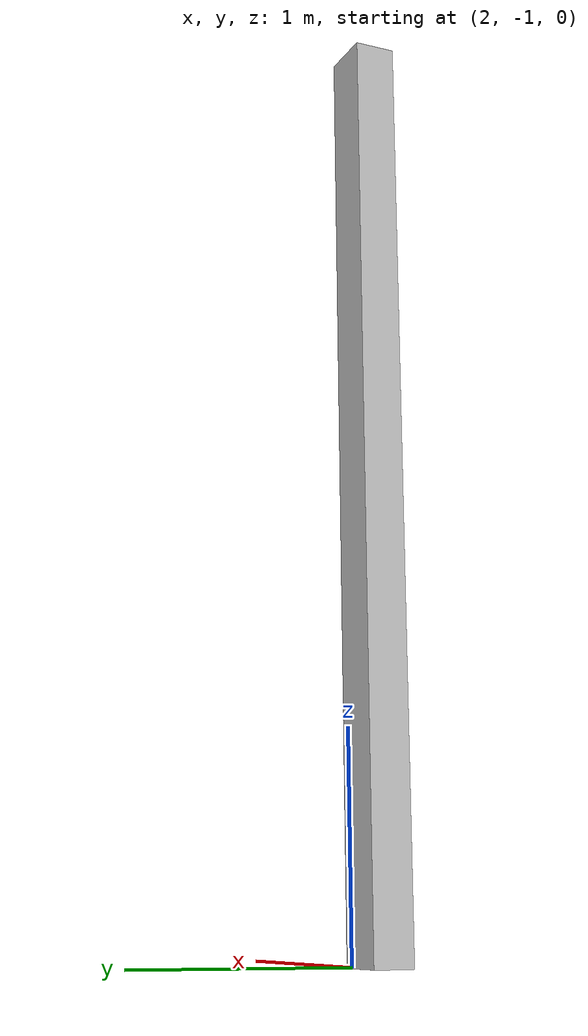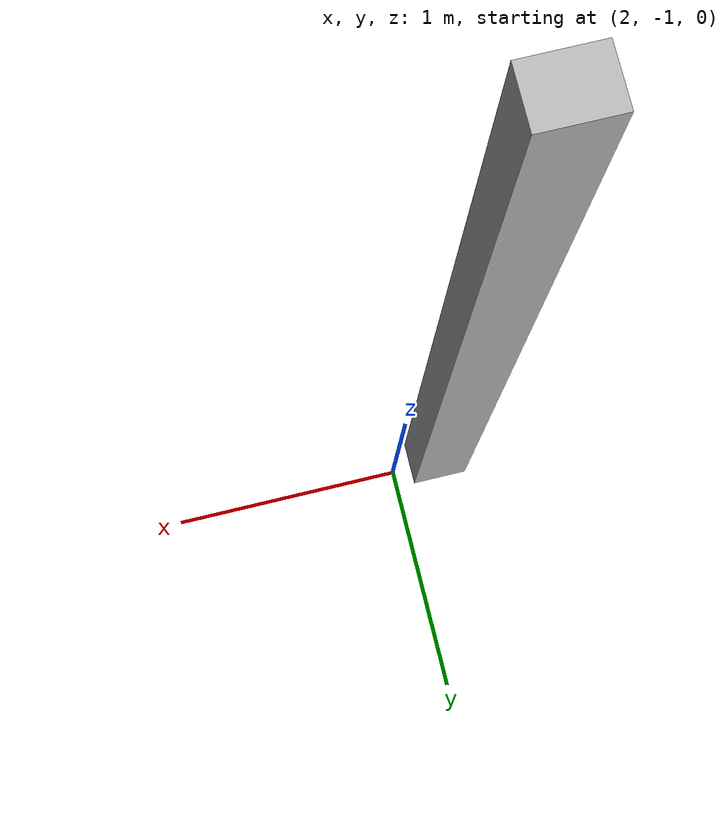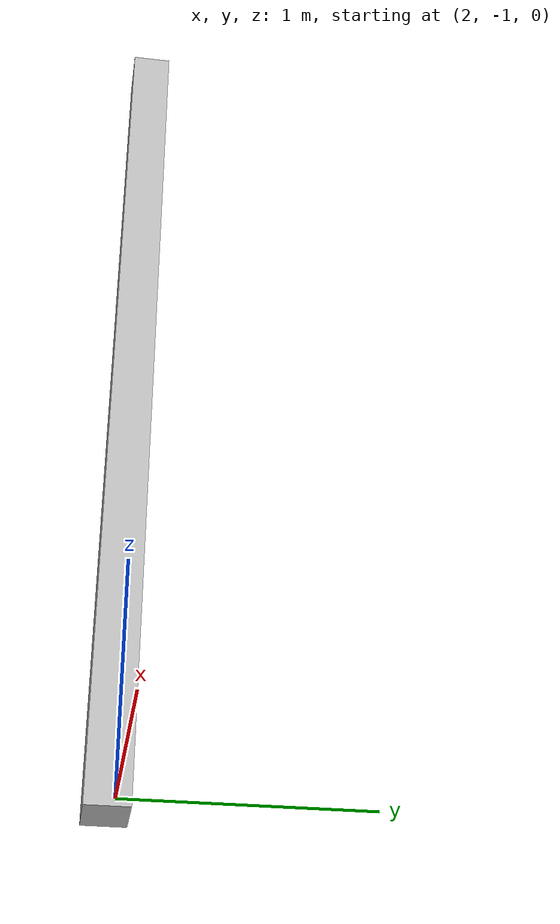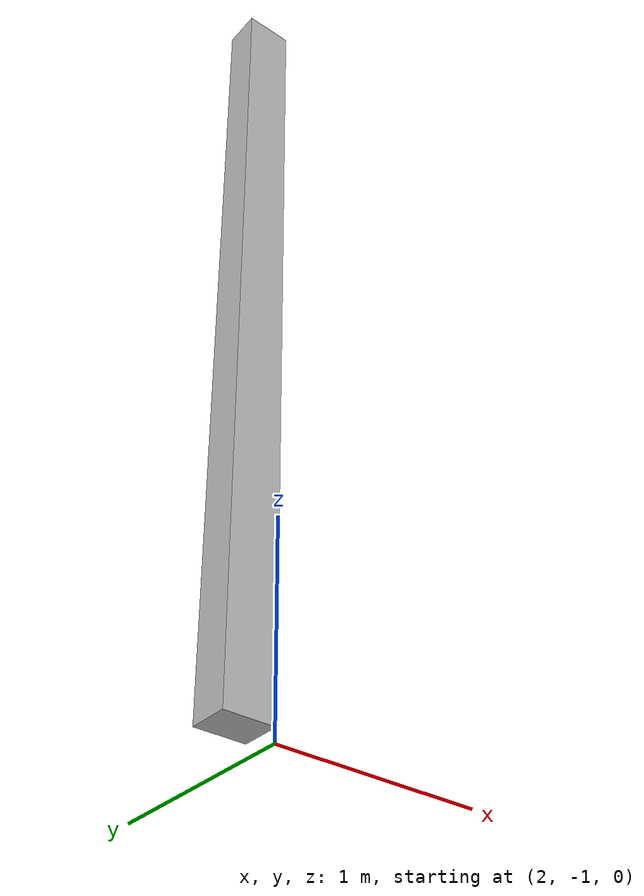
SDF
<?xml version="1.0" ?>
<sdf version="1.5">
  <model name="wood_beam">
    <static>true</static>
    <link name="wood_beam_link">
      <collision name="collision">
        <geometry>
          <mesh>
          <scale>2 2 2</scale>
            <uri>model://wood_beam/meshes/model.dae</uri>
          </mesh>
        </geometry>
      </collision>
      <visual name="visual">
        <geometry>
          <mesh>
          <scale>2 2 2</scale>
            <uri>model://wood_beam/meshes/model.dae</uri>
          </mesh>
        </geometry>
      </visual>
    </link>
  </model>
</sdf>
